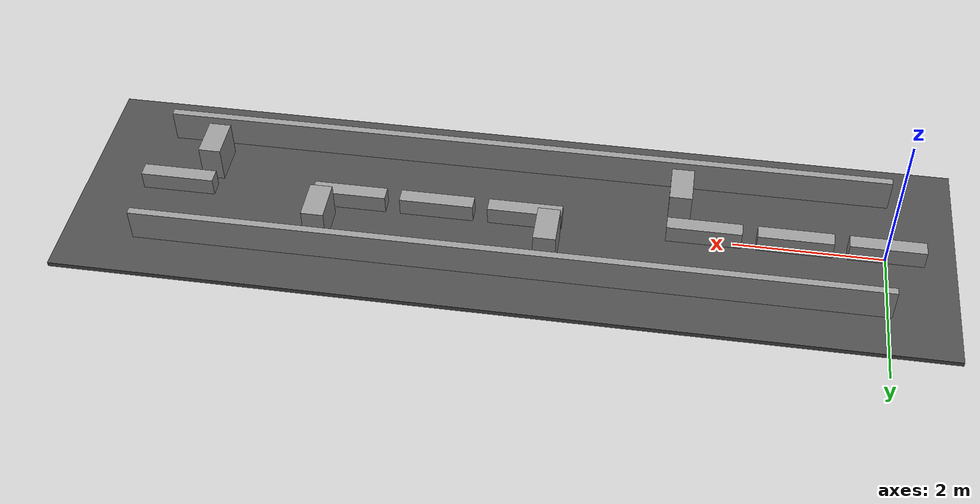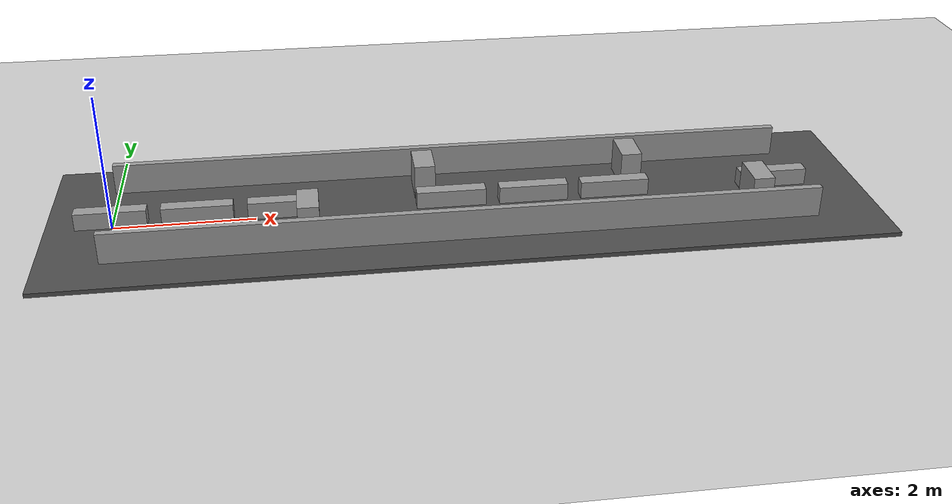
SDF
<sdf version="1.7">
 <world name="default">
  <light name="sun" type="directional">
   <pose>0 0 10 0 -0 0</pose>
   <diffuse>0.8 0.8 0.8 1</diffuse>
   <specular>0.2 0.2 0.2 1</specular>
   <attenuation>
    <range>1000</range>
    <constant>0.9</constant>
    <linear>0.01</linear>
    <quadratic>0.001</quadratic>
   </attenuation>
   <direction>-0.5 0.1 -0.9</direction>
   <spot><inner_angle>0</inner_angle><outer_angle>0</outer_angle><falloff>0</falloff></spot>
  </light>
  <model name="ground_plane">
   <static>1</static>
   <link name="link">
    <collision name="collision">
     <geometry><plane><normal>0 0 1</normal><size>100 100</size></plane></geometry>
     <surface><friction><ode><mu>100</mu><mu2>50</mu2></ode></friction></surface>
    </collision>
    <visual name="visual">
     <cast_shadows>0</cast_shadows>
     <geometry><plane><normal>0 0 1</normal><size>100 100</size></plane></geometry>
     <material>
      <script><uri>file://media/materials/scripts/gazebo.material</uri><name>Gazebo/Grey</name></script>
     </material>
    </visual>
   </link>
  </model>
  <gravity>0 0 -9.8</gravity>
  <magnetic_field>6e-06 2.3e-05 -4.2e-05</magnetic_field>
  <atmosphere type="adiabatic"/>
  <physics type="ode">
   <max_step_size>0.001</max_step_size>
   <real_time_factor>1</real_time_factor>
   <real_time_update_rate>1000</real_time_update_rate>
  </physics>
  <scene><ambient>0.4 0.4 0.4 1</ambient><background>0.7 0.7 0.7 1</background><shadows>1</shadows></scene>
  <spherical_coordinates>
   <surface_model>EARTH_WGS84</surface_model>
   <latitude_deg>0</latitude_deg>
   <longitude_deg>0</longitude_deg>
   <elevation>0</elevation>
   <heading_deg>0</heading_deg>
  </spherical_coordinates>
  <model name="roads">
   <pose>4.95 0 0 0 -0 0</pose>
   <link name="Wall_19">
    <collision name="Wall_19_Collision">
     <geometry><box><size>10 0.1 0.5</size></box></geometry>
     <pose>0 0 0.25 0 -0 0</pose>
    </collision>
    <visual name="Wall_19_Visual">
     <pose>0 0 0.25 0 -0 0</pose>
     <geometry><box><size>10 0.1 0.5</size></box></geometry>
     <material>
      <script><uri>file://media/materials/scripts/gazebo.material</uri><name>Gazebo/Grey</name></script>
      <ambient>1 1 1 1</ambient>
     </material>
     <meta><layer>0</layer></meta>
    </visual>
    <pose>0 1 0 0 -0 0</pose>
   </link>
   <link name="Wall_23">
    <collision name="Wall_23_Collision">
     <geometry><box><size>10 0.1 0.5</size></box></geometry>
     <pose>0 0 0.25 0 -0 0</pose>
    </collision>
    <visual name="Wall_23_Visual">
     <pose>0 0 0.25 0 -0 0</pose>
     <geometry><box><size>10 0.1 0.5</size></box></geometry>
     <material>
      <script><uri>file://media/materials/scripts/gazebo.material</uri><name>Gazebo/Grey</name></script>
      <ambient>1 1 1 1</ambient>
     </material>
     <meta><layer>0</layer></meta>
    </visual>
    <pose>0 -1 0 0 -0 0</pose>
   </link>
   <static>1</static>
  </model>
  <model name="block">
   <link name="link_1">
    <inertial>
     <mass>1</mass>
     <inertia>
      <ixx>0.166667</ixx>
      <ixy>0</ixy>
      <ixz>0</ixz>
      <iyy>0.166667</iyy>
      <iyz>0</iyz>
      <izz>0.166667</izz>
     </inertia>
    </inertial>
    <visual name="visual">
     <geometry><box><size>1 0.2 0.25</size></box></geometry>
     <material>
      <lighting>1</lighting>
      <script><uri>file://media/materials/scripts/gazebo.material</uri><name>Gazebo/Grey</name></script>
      <shader type="pixel"><normal_map>__default__</normal_map></shader>
      <ambient>1 1 1 1</ambient>
      <diffuse>1 1 1 1</diffuse>
      <specular>0.01 0.01 0.01 1</specular>
      <emissive>0 0 0 1</emissive>
     </material>
    </visual>
    <collision name="collision">
     <geometry><box><size>1 0.2 0.25</size></box></geometry>
     <surface>
      <friction>
       <ode><mu>1</mu><mu2>1</mu2><fdir1>0 0 0</fdir1><slip1>0</slip1><slip2>0</slip2></ode>
       <torsional>
        <coefficient>1</coefficient>
        <patch_radius>0</patch_radius>
        <surface_radius>0</surface_radius>
        <use_patch_radius>1</use_patch_radius>
        <ode><slip>0</slip></ode>
       </torsional>
      </friction>
      <bounce><restitution_coefficient>0</restitution_coefficient><threshold>1e+06</threshold></bounce>
      <contact>
       <collide_without_contact>0</collide_without_contact>
       <collide_without_contact_bitmask>1</collide_without_contact_bitmask>
       <collide_bitmask>1</collide_bitmask>
       <ode>
        <soft_cfm>0</soft_cfm>
        <soft_erp>0.2</soft_erp>
        <kp>1e+13</kp>
        <kd>1</kd>
        <max_vel>0.01</max_vel>
        <min_depth>0</min_depth>
       </ode>
       <bullet>
        <split_impulse>1</split_impulse>
        <split_impulse_penetration_threshold>-0.01</split_impulse_penetration_threshold>
        <soft_cfm>0</soft_cfm>
        <soft_erp>0.2</soft_erp>
        <kp>1e+13</kp>
        <kd>1</kd>
       </bullet>
      </contact>
     </surface>
    </collision>
   </link>
   <static>0</static>
   <pose>0.002503 0.000185 0.175 0 -0 0.000374</pose>
  </model>
  <model name="block_clone">
   <link name="link_1">
    <inertial>
     <mass>1</mass>
     <inertia>
      <ixx>0.166667</ixx>
      <ixy>0</ixy>
      <ixz>0</ixz>
      <iyy>0.166667</iyy>
      <iyz>0</iyz>
      <izz>0.166667</izz>
     </inertia>
    </inertial>
    <visual name="visual">
     <geometry><box><size>1 0.2 0.25</size></box></geometry>
     <material>
      <lighting>1</lighting>
      <script><uri>file://media/materials/scripts/gazebo.material</uri><name>Gazebo/Grey</name></script>
      <shader type="pixel"><normal_map>__default__</normal_map></shader>
      <ambient>1 1 1 1</ambient>
      <diffuse>1 1 1 1</diffuse>
      <specular>0.01 0.01 0.01 1</specular>
      <emissive>0 0 0 1</emissive>
     </material>
    </visual>
    <collision name="collision">
     <geometry><box><size>1 0.2 0.25</size></box></geometry>
     <surface>
      <friction>
       <ode><mu>1</mu><mu2>1</mu2><fdir1>0 0 0</fdir1><slip1>0</slip1><slip2>0</slip2></ode>
       <torsional>
        <coefficient>1</coefficient>
        <patch_radius>0</patch_radius>
        <surface_radius>0</surface_radius>
        <use_patch_radius>1</use_patch_radius>
        <ode><slip>0</slip></ode>
       </torsional>
      </friction>
      <bounce><restitution_coefficient>0</restitution_coefficient><threshold>1e+06</threshold></bounce>
      <contact>
       <collide_without_contact>0</collide_without_contact>
       <collide_without_contact_bitmask>1</collide_without_contact_bitmask>
       <collide_bitmask>1</collide_bitmask>
       <ode>
        <soft_cfm>0</soft_cfm>
        <soft_erp>0.2</soft_erp>
        <kp>1e+13</kp>
        <kd>1</kd>
        <max_vel>0.01</max_vel>
        <min_depth>0</min_depth>
       </ode>
       <bullet>
        <split_impulse>1</split_impulse>
        <split_impulse_penetration_threshold>-0.01</split_impulse_penetration_threshold>
        <soft_cfm>0</soft_cfm>
        <soft_erp>0.2</soft_erp>
        <kp>1e+13</kp>
        <kd>1</kd>
       </bullet>
      </contact>
     </surface>
    </collision>
   </link>
   <static>0</static>
   <pose>1.2 -0 0.174991 0 -0 0</pose>
  </model>
  <model name="block_clone_clone">
   <link name="link_1">
    <inertial>
     <mass>1</mass>
     <inertia>
      <ixx>0.166667</ixx>
      <ixy>0</ixy>
      <ixz>0</ixz>
      <iyy>0.166667</iyy>
      <iyz>0</iyz>
      <izz>0.166667</izz>
     </inertia>
    </inertial>
    <visual name="visual">
     <geometry><box><size>1 0.2 0.25</size></box></geometry>
     <material>
      <lighting>1</lighting>
      <script><uri>file://media/materials/scripts/gazebo.material</uri><name>Gazebo/Grey</name></script>
      <shader type="pixel"><normal_map>__default__</normal_map></shader>
      <ambient>1 1 1 1</ambient>
      <diffuse>1 1 1 1</diffuse>
      <specular>0.01 0.01 0.01 1</specular>
      <emissive>0 0 0 1</emissive>
     </material>
    </visual>
    <collision name="collision">
     <geometry><box><size>1 0.2 0.25</size></box></geometry>
     <surface>
      <friction>
       <ode><mu>1</mu><mu2>1</mu2><fdir1>0 0 0</fdir1><slip1>0</slip1><slip2>0</slip2></ode>
       <torsional>
        <coefficient>1</coefficient>
        <patch_radius>0</patch_radius>
        <surface_radius>0</surface_radius>
        <use_patch_radius>1</use_patch_radius>
        <ode><slip>0</slip></ode>
       </torsional>
      </friction>
      <bounce><restitution_coefficient>0</restitution_coefficient><threshold>1e+06</threshold></bounce>
      <contact>
       <collide_without_contact>0</collide_without_contact>
       <collide_without_contact_bitmask>1</collide_without_contact_bitmask>
       <collide_bitmask>1</collide_bitmask>
       <ode>
        <soft_cfm>0</soft_cfm>
        <soft_erp>0.2</soft_erp>
        <kp>1e+13</kp>
        <kd>1</kd>
        <max_vel>0.01</max_vel>
        <min_depth>0</min_depth>
       </ode>
       <bullet>
        <split_impulse>1</split_impulse>
        <split_impulse_penetration_threshold>-0.01</split_impulse_penetration_threshold>
        <soft_cfm>0</soft_cfm>
        <soft_erp>0.2</soft_erp>
        <kp>1e+13</kp>
        <kd>1</kd>
       </bullet>
      </contact>
     </surface>
    </collision>
   </link>
   <static>0</static>
   <pose>2.4 -0 0.174991 0 -0 0</pose>
  </model>
  <model name="block_clone_clone_0">
   <link name="link_1">
    <inertial>
     <mass>1</mass>
     <inertia>
      <ixx>0.166667</ixx>
      <ixy>0</ixy>
      <ixz>0</ixz>
      <iyy>0.166667</iyy>
      <iyz>0</iyz>
      <izz>0.166667</izz>
     </inertia>
    </inertial>
    <visual name="visual">
     <geometry><box><size>1 0.2 0.25</size></box></geometry>
     <material>
      <lighting>1</lighting>
      <script><uri>file://media/materials/scripts/gazebo.material</uri><name>Gazebo/Grey</name></script>
      <shader type="pixel"><normal_map>__default__</normal_map></shader>
      <ambient>1 1 1 1</ambient>
      <diffuse>1 1 1 1</diffuse>
      <specular>0.01 0.01 0.01 1</specular>
      <emissive>0 0 0 1</emissive>
     </material>
    </visual>
    <collision name="collision">
     <geometry><box><size>1 0.2 0.25</size></box></geometry>
     <surface>
      <friction>
       <ode><mu>1</mu><mu2>1</mu2><fdir1>0 0 0</fdir1><slip1>0</slip1><slip2>0</slip2></ode>
       <torsional>
        <coefficient>1</coefficient>
        <patch_radius>0</patch_radius>
        <surface_radius>0</surface_radius>
        <use_patch_radius>1</use_patch_radius>
        <ode><slip>0</slip></ode>
       </torsional>
      </friction>
      <bounce><restitution_coefficient>0</restitution_coefficient><threshold>1e+06</threshold></bounce>
      <contact>
       <collide_without_contact>0</collide_without_contact>
       <collide_without_contact_bitmask>1</collide_without_contact_bitmask>
       <collide_bitmask>1</collide_bitmask>
       <ode>
        <soft_cfm>0</soft_cfm>
        <soft_erp>0.2</soft_erp>
        <kp>1e+13</kp>
        <kd>1</kd>
        <max_vel>0.01</max_vel>
        <min_depth>0</min_depth>
       </ode>
       <bullet>
        <split_impulse>1</split_impulse>
        <split_impulse_penetration_threshold>-0.01</split_impulse_penetration_threshold>
        <soft_cfm>0</soft_cfm>
        <soft_erp>0.2</soft_erp>
        <kp>1e+13</kp>
        <kd>1</kd>
       </bullet>
      </contact>
     </surface>
    </collision>
   </link>
   <static>0</static>
   <pose>4.8 -0 0.174991 0 -0 0</pose>
  </model>
  <model name="block_clone_clone_1">
   <link name="link_1">
    <inertial>
     <mass>1</mass>
     <inertia>
      <ixx>0.166667</ixx>
      <ixy>0</ixy>
      <ixz>0</ixz>
      <iyy>0.166667</iyy>
      <iyz>0</iyz>
      <izz>0.166667</izz>
     </inertia>
    </inertial>
    <visual name="visual">
     <geometry><box><size>1 0.2 0.25</size></box></geometry>
     <material>
      <lighting>1</lighting>
      <script><uri>file://media/materials/scripts/gazebo.material</uri><name>Gazebo/Grey</name></script>
      <shader type="pixel"><normal_map>__default__</normal_map></shader>
      <ambient>1 1 1 1</ambient>
      <diffuse>1 1 1 1</diffuse>
      <specular>0.01 0.01 0.01 1</specular>
      <emissive>0 0 0 1</emissive>
     </material>
    </visual>
    <collision name="collision">
     <geometry><box><size>1 0.2 0.25</size></box></geometry>
     <surface>
      <friction>
       <ode><mu>1</mu><mu2>1</mu2><fdir1>0 0 0</fdir1><slip1>0</slip1><slip2>0</slip2></ode>
       <torsional>
        <coefficient>1</coefficient>
        <patch_radius>0</patch_radius>
        <surface_radius>0</surface_radius>
        <use_patch_radius>1</use_patch_radius>
        <ode><slip>0</slip></ode>
       </torsional>
      </friction>
      <bounce><restitution_coefficient>0</restitution_coefficient><threshold>1e+06</threshold></bounce>
      <contact>
       <collide_without_contact>0</collide_without_contact>
       <collide_without_contact_bitmask>1</collide_without_contact_bitmask>
       <collide_bitmask>1</collide_bitmask>
       <ode>
        <soft_cfm>0</soft_cfm>
        <soft_erp>0.2</soft_erp>
        <kp>1e+13</kp>
        <kd>1</kd>
        <max_vel>0.01</max_vel>
        <min_depth>0</min_depth>
       </ode>
       <bullet>
        <split_impulse>1</split_impulse>
        <split_impulse_penetration_threshold>-0.01</split_impulse_penetration_threshold>
        <soft_cfm>0</soft_cfm>
        <soft_erp>0.2</soft_erp>
        <kp>1e+13</kp>
        <kd>1</kd>
       </bullet>
      </contact>
     </surface>
    </collision>
   </link>
   <static>0</static>
   <pose>6 -0 0.174991 0 -0 0</pose>
  </model>
  <model name="block_clone_clone_2">
   <link name="link_1">
    <inertial>
     <mass>1</mass>
     <inertia>
      <ixx>0.166667</ixx>
      <ixy>0</ixy>
      <ixz>0</ixz>
      <iyy>0.166667</iyy>
      <iyz>0</iyz>
      <izz>0.166667</izz>
     </inertia>
    </inertial>
    <visual name="visual">
     <geometry><box><size>1 0.2 0.25</size></box></geometry>
     <material>
      <lighting>1</lighting>
      <script><uri>file://media/materials/scripts/gazebo.material</uri><name>Gazebo/Grey</name></script>
      <shader type="pixel"><normal_map>__default__</normal_map></shader>
      <ambient>1 1 1 1</ambient>
      <diffuse>1 1 1 1</diffuse>
      <specular>0.01 0.01 0.01 1</specular>
      <emissive>0 0 0 1</emissive>
     </material>
    </visual>
    <collision name="collision">
     <geometry><box><size>1 0.2 0.25</size></box></geometry>
     <surface>
      <friction>
       <ode><mu>1</mu><mu2>1</mu2><fdir1>0 0 0</fdir1><slip1>0</slip1><slip2>0</slip2></ode>
       <torsional>
        <coefficient>1</coefficient>
        <patch_radius>0</patch_radius>
        <surface_radius>0</surface_radius>
        <use_patch_radius>1</use_patch_radius>
        <ode><slip>0</slip></ode>
       </torsional>
      </friction>
      <bounce><restitution_coefficient>0</restitution_coefficient><threshold>1e+06</threshold></bounce>
      <contact>
       <collide_without_contact>0</collide_without_contact>
       <collide_without_contact_bitmask>1</collide_without_contact_bitmask>
       <collide_bitmask>1</collide_bitmask>
       <ode>
        <soft_cfm>0</soft_cfm>
        <soft_erp>0.2</soft_erp>
        <kp>1e+13</kp>
        <kd>1</kd>
        <max_vel>0.01</max_vel>
        <min_depth>0</min_depth>
       </ode>
       <bullet>
        <split_impulse>1</split_impulse>
        <split_impulse_penetration_threshold>-0.01</split_impulse_penetration_threshold>
        <soft_cfm>0</soft_cfm>
        <soft_erp>0.2</soft_erp>
        <kp>1e+13</kp>
        <kd>1</kd>
       </bullet>
      </contact>
     </surface>
    </collision>
   </link>
   <static>0</static>
   <pose>7.2 -0 0.174991 0 -0 0</pose>
  </model>
  <model name="block_clone_clone_3">
   <link name="link_1">
    <inertial>
     <mass>1</mass>
     <inertia>
      <ixx>0.166667</ixx>
      <ixy>0</ixy>
      <ixz>0</ixz>
      <iyy>0.166667</iyy>
      <iyz>0</iyz>
      <izz>0.166667</izz>
     </inertia>
    </inertial>
    <visual name="visual">
     <geometry><box><size>1 0.2 0.25</size></box></geometry>
     <material>
      <lighting>1</lighting>
      <script><uri>file://media/materials/scripts/gazebo.material</uri><name>Gazebo/Grey</name></script>
      <shader type="pixel"><normal_map>__default__</normal_map></shader>
      <ambient>1 1 1 1</ambient>
      <diffuse>1 1 1 1</diffuse>
      <specular>0.01 0.01 0.01 1</specular>
      <emissive>0 0 0 1</emissive>
     </material>
    </visual>
    <collision name="collision">
     <geometry><box><size>1 0.2 0.25</size></box></geometry>
     <surface>
      <friction>
       <ode><mu>1</mu><mu2>1</mu2><fdir1>0 0 0</fdir1><slip1>0</slip1><slip2>0</slip2></ode>
       <torsional>
        <coefficient>1</coefficient>
        <patch_radius>0</patch_radius>
        <surface_radius>0</surface_radius>
        <use_patch_radius>1</use_patch_radius>
        <ode><slip>0</slip></ode>
       </torsional>
      </friction>
      <bounce><restitution_coefficient>0</restitution_coefficient><threshold>1e+06</threshold></bounce>
      <contact>
       <collide_without_contact>0</collide_without_contact>
       <collide_without_contact_bitmask>1</collide_without_contact_bitmask>
       <collide_bitmask>1</collide_bitmask>
       <ode>
        <soft_cfm>0</soft_cfm>
        <soft_erp>0.2</soft_erp>
        <kp>1e+13</kp>
        <kd>1</kd>
        <max_vel>0.01</max_vel>
        <min_depth>0</min_depth>
       </ode>
       <bullet>
        <split_impulse>1</split_impulse>
        <split_impulse_penetration_threshold>-0.01</split_impulse_penetration_threshold>
        <soft_cfm>0</soft_cfm>
        <soft_erp>0.2</soft_erp>
        <kp>1e+13</kp>
        <kd>1</kd>
       </bullet>
      </contact>
     </surface>
    </collision>
   </link>
   <static>0</static>
   <pose>9.6 -0 0.174991 0 -0 0</pose>
  </model>
  <model name="obstacle">
   <link name="link_5">
    <inertial>
     <mass>1</mass>
     <inertia>
      <ixx>0.166667</ixx>
      <ixy>0</ixy>
      <ixz>0</ixz>
      <iyy>0.166667</iyy>
      <iyz>0</iyz>
      <izz>0.166667</izz>
     </inertia>
    </inertial>
    <visual name="visual">
     <geometry><box><size>0.3 0.55 0.5</size></box></geometry>
     <material>
      <lighting>1</lighting>
      <script><uri>file://media/materials/scripts/gazebo.material</uri><name>Gazebo/Grey</name></script>
      <shader type="pixel"><normal_map>__default__</normal_map></shader>
      <ambient>1 1 1 1</ambient>
      <diffuse>1 1 1 1</diffuse>
      <specular>0.01 0.01 0.01 1</specular>
      <emissive>0 0 0 1</emissive>
     </material>
    </visual>
    <collision name="collision">
     <geometry><box><size>0.3 0.55 0.5</size></box></geometry>
     <surface>
      <friction>
       <ode><mu>1</mu><mu2>1</mu2><fdir1>0 0 0</fdir1><slip1>0</slip1><slip2>0</slip2></ode>
       <torsional>
        <coefficient>1</coefficient>
        <patch_radius>0</patch_radius>
        <surface_radius>0</surface_radius>
        <use_patch_radius>1</use_patch_radius>
        <ode><slip>0</slip></ode>
       </torsional>
      </friction>
      <bounce><restitution_coefficient>0</restitution_coefficient><threshold>1e+06</threshold></bounce>
      <contact>
       <collide_without_contact>0</collide_without_contact>
       <collide_without_contact_bitmask>1</collide_without_contact_bitmask>
       <collide_bitmask>1</collide_bitmask>
       <ode>
        <soft_cfm>0</soft_cfm>
        <soft_erp>0.2</soft_erp>
        <kp>1e+13</kp>
        <kd>1</kd>
        <max_vel>0.01</max_vel>
        <min_depth>0</min_depth>
       </ode>
       <bullet>
        <split_impulse>1</split_impulse>
        <split_impulse_penetration_threshold>-0.01</split_impulse_penetration_threshold>
        <soft_cfm>0</soft_cfm>
        <soft_erp>0.2</soft_erp>
        <kp>1e+13</kp>
        <kd>1</kd>
       </bullet>
      </contact>
     </surface>
    </collision>
   </link>
   <static>0</static>
   <pose>2.75 -0.5 0.3 0 -0 0</pose>
  </model>
  <model name="obstacle_clone">
   <link name="link_5">
    <inertial>
     <mass>1</mass>
     <inertia>
      <ixx>0.166667</ixx>
      <ixy>0</ixy>
      <ixz>0</ixz>
      <iyy>0.166667</iyy>
      <iyz>0</iyz>
      <izz>0.166667</izz>
     </inertia>
    </inertial>
    <visual name="visual">
     <geometry><box><size>0.3 0.55 0.5</size></box></geometry>
     <material>
      <lighting>1</lighting>
      <script><uri>file://media/materials/scripts/gazebo.material</uri><name>Gazebo/Grey</name></script>
      <shader type="pixel"><normal_map>__default__</normal_map></shader>
      <ambient>1 1 1 1</ambient>
      <diffuse>1 1 1 1</diffuse>
      <specular>0.01 0.01 0.01 1</specular>
      <emissive>0 0 0 1</emissive>
     </material>
    </visual>
    <collision name="collision">
     <geometry><box><size>0.3 0.55 0.5</size></box></geometry>
     <surface>
      <friction>
       <ode><mu>1</mu><mu2>1</mu2><fdir1>0 0 0</fdir1><slip1>0</slip1><slip2>0</slip2></ode>
       <torsional>
        <coefficient>1</coefficient>
        <patch_radius>0</patch_radius>
        <surface_radius>0</surface_radius>
        <use_patch_radius>1</use_patch_radius>
        <ode><slip>0</slip></ode>
       </torsional>
      </friction>
      <bounce><restitution_coefficient>0</restitution_coefficient><threshold>1e+06</threshold></bounce>
      <contact>
       <collide_without_contact>0</collide_without_contact>
       <collide_without_contact_bitmask>1</collide_without_contact_bitmask>
       <collide_bitmask>1</collide_bitmask>
       <ode>
        <soft_cfm>0</soft_cfm>
        <soft_erp>0.2</soft_erp>
        <kp>1e+13</kp>
        <kd>1</kd>
        <max_vel>0.01</max_vel>
        <min_depth>0</min_depth>
       </ode>
       <bullet>
        <split_impulse>1</split_impulse>
        <split_impulse_penetration_threshold>-0.01</split_impulse_penetration_threshold>
        <soft_cfm>0</soft_cfm>
        <soft_erp>0.2</soft_erp>
        <kp>1e+13</kp>
        <kd>1</kd>
       </bullet>
      </contact>
     </surface>
    </collision>
   </link>
   <static>0</static>
   <pose>4.45 0.5 0.3 0 -0 0</pose>
  </model>
  <model name="obstacle_clone_0">
   <link name="link_5">
    <inertial>
     <mass>1</mass>
     <inertia>
      <ixx>0.166667</ixx>
      <ixy>0</ixy>
      <ixz>0</ixz>
      <iyy>0.166667</iyy>
      <iyz>0</iyz>
      <izz>0.166667</izz>
     </inertia>
    </inertial>
    <visual name="visual">
     <geometry><box><size>0.3 0.55 0.5</size></box></geometry>
     <material>
      <lighting>1</lighting>
      <script><uri>file://media/materials/scripts/gazebo.material</uri><name>Gazebo/Grey</name></script>
      <shader type="pixel"><normal_map>__default__</normal_map></shader>
      <ambient>1 1 1 1</ambient>
      <diffuse>1 1 1 1</diffuse>
      <specular>0.01 0.01 0.01 1</specular>
      <emissive>0 0 0 1</emissive>
     </material>
    </visual>
    <collision name="collision">
     <geometry><box><size>0.3 0.55 0.5</size></box></geometry>
     <surface>
      <friction>
       <ode><mu>1</mu><mu2>1</mu2><fdir1>0 0 0</fdir1><slip1>0</slip1><slip2>0</slip2></ode>
       <torsional>
        <coefficient>1</coefficient>
        <patch_radius>0</patch_radius>
        <surface_radius>0</surface_radius>
        <use_patch_radius>1</use_patch_radius>
        <ode><slip>0</slip></ode>
       </torsional>
      </friction>
      <bounce><restitution_coefficient>0</restitution_coefficient><threshold>1e+06</threshold></bounce>
      <contact>
       <collide_without_contact>0</collide_without_contact>
       <collide_without_contact_bitmask>1</collide_without_contact_bitmask>
       <collide_bitmask>1</collide_bitmask>
       <ode>
        <soft_cfm>0</soft_cfm>
        <soft_erp>0.2</soft_erp>
        <kp>1e+13</kp>
        <kd>1</kd>
        <max_vel>0.01</max_vel>
        <min_depth>0</min_depth>
       </ode>
       <bullet>
        <split_impulse>1</split_impulse>
        <split_impulse_penetration_threshold>-0.01</split_impulse_penetration_threshold>
        <soft_cfm>0</soft_cfm>
        <soft_erp>0.2</soft_erp>
        <kp>1e+13</kp>
        <kd>1</kd>
       </bullet>
      </contact>
     </surface>
    </collision>
   </link>
   <static>0</static>
   <pose>9.2 -0.5 0.3 0 -0 0</pose>
  </model>
  <model name="obstacle_clone_1">
   <link name="link_5">
    <inertial>
     <mass>1</mass>
     <inertia>
      <ixx>0.166667</ixx>
      <ixy>0</ixy>
      <ixz>0</ixz>
      <iyy>0.166667</iyy>
      <iyz>0</iyz>
      <izz>0.166667</izz>
     </inertia>
    </inertial>
    <visual name="visual">
     <geometry><box><size>0.3 0.55 0.5</size></box></geometry>
     <material>
      <lighting>1</lighting>
      <script><uri>file://media/materials/scripts/gazebo.material</uri><name>Gazebo/Grey</name></script>
      <shader type="pixel"><normal_map>__default__</normal_map></shader>
      <ambient>1 1 1 1</ambient>
      <diffuse>1 1 1 1</diffuse>
      <specular>0.01 0.01 0.01 1</specular>
      <emissive>0 0 0 1</emissive>
     </material>
    </visual>
    <collision name="collision">
     <geometry><box><size>0.3 0.55 0.5</size></box></geometry>
     <surface>
      <friction>
       <ode><mu>1</mu><mu2>1</mu2><fdir1>0 0 0</fdir1><slip1>0</slip1><slip2>0</slip2></ode>
       <torsional>
        <coefficient>1</coefficient>
        <patch_radius>0</patch_radius>
        <surface_radius>0</surface_radius>
        <use_patch_radius>1</use_patch_radius>
        <ode><slip>0</slip></ode>
       </torsional>
      </friction>
      <bounce><restitution_coefficient>0</restitution_coefficient><threshold>1e+06</threshold></bounce>
      <contact>
       <collide_without_contact>0</collide_without_contact>
       <collide_without_contact_bitmask>1</collide_without_contact_bitmask>
       <collide_bitmask>1</collide_bitmask>
       <ode>
        <soft_cfm>0</soft_cfm>
        <soft_erp>0.2</soft_erp>
        <kp>1e+13</kp>
        <kd>1</kd>
        <max_vel>0.01</max_vel>
        <min_depth>0</min_depth>
       </ode>
       <bullet>
        <split_impulse>1</split_impulse>
        <split_impulse_penetration_threshold>-0.01</split_impulse_penetration_threshold>
        <soft_cfm>0</soft_cfm>
        <soft_erp>0.2</soft_erp>
        <kp>1e+13</kp>
        <kd>1</kd>
       </bullet>
      </contact>
     </surface>
    </collision>
   </link>
   <static>0</static>
   <pose>7.52 0.5 0.3 0 -0 0</pose>
  </model>
  <model name="asphalt_plane">
   <static>1</static>
   <link name="link">
    <collision name="collision"><geometry><box><size>11.8289 3.33764 0.1</size></box></geometry></collision>
    <visual name="visual">
     <cast_shadows>0</cast_shadows>
     <geometry><box><size>11.8289 3.33764 0.1</size></box></geometry>
     <material>
      <script>
       <uri>model://asphalt_plane/materials/scripts</uri>
       <uri>model://asphalt_plane/materials/textures</uri>
       <name>vrc/asphalt</name>
      </script>
     </material>
    </visual>
   </link>
   <pose>5 0 0 0 -0 0</pose>
  </model>
 </world>
</sdf>
